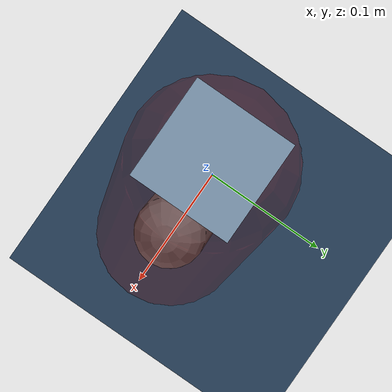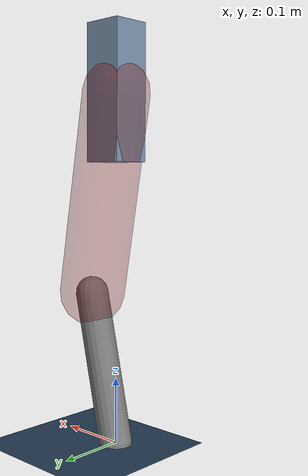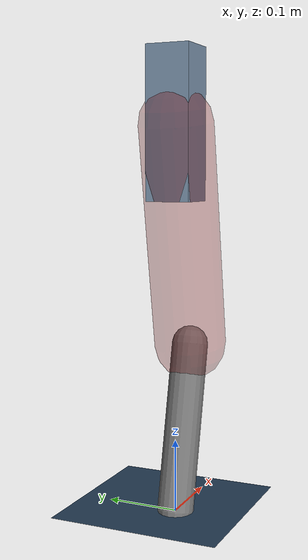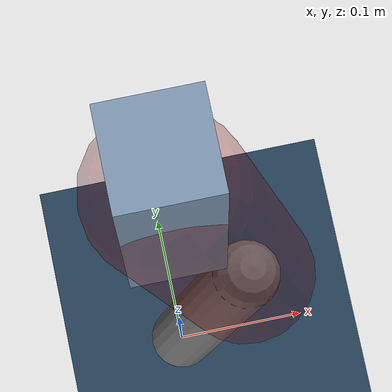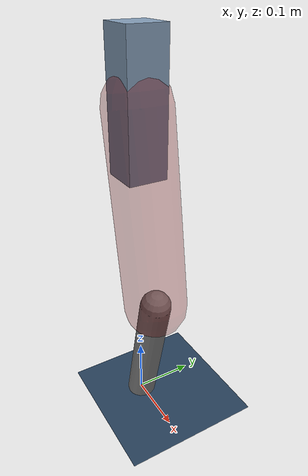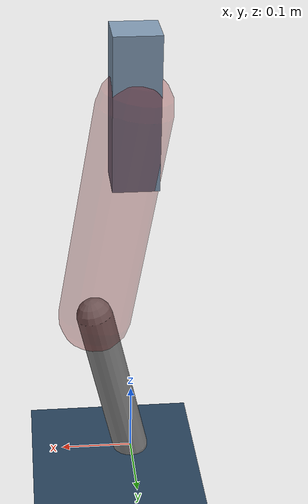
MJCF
<mujoco model="Hopper2D">
	<compiler inertiafromgeom="true" angle="radian" />
	<option timestep="0.001" integrator="implicit" cone="elliptic" solver="Newton" tolerance="1e-10" />

	<default>
		<geom contype="1" conaffinity="1" condim="3" friction="2 0.005 0.0001" solref="0.005 1" />
		<joint limited="true" damping="0.1" />
	</default>

	<asset>
		<texture name="skybox" type="skybox" builtin="gradient" rgb1=".4 .6 .8" rgb2="0 0 0" width="800" height="800" />
		<texture name="grid" type="2d" builtin="checker" rgb1=".1 .2 .3" rgb2=".2 .3 .4" width="300" height="300" mark="edge" markrgb=".2 .3 .4" />
		<material name="ground" texture="grid" texrepeat="1 1" texuniform="true" reflectance="0.1" />
		<material name="leg" rgba="0.5 0.6 0.7 1" />
	</asset>

	<worldbody>

		<geom name="floor" type="plane" size="5 5 0.25" material="ground" />

		<light directional="false" diffuse="0.8 0.8 0.8" specular="0.3 0.3 0.3" pos="0 0 2" dir="0 0 -1" />
		<light mode="targetbodycom" target="base" directional="false" diffuse="0.8 0.8 0.8" specular="0.3 0.3 0.3" pos="0 0 2" dir="0 0 -1" />

		<camera name="fixed" pos="0 -2 1" xyaxes="1 0 0 0 0 1" />
		<camera name="tracking" mode="trackcom" pos="0 -3 1" />

		<body name="root" pos="0 0 0.525406152164369">
			<joint name="slide_x" type="slide" axis="1 0 0" range="-100 100" />
			<joint name="slide_z" type="slide" axis="0 0 1" range="0 10" />

			<body name="base" pos="0 0 0">
				<geom name="torso" type="box" size="0.03 0.03 0.1" mass="3.801" material="leg" />

				<body name="link1" pos="0 0 0" euler="0 1.4020051182947588 0">
					<joint type="hinge" axis="0 -1 0" pos="0 0 0" name="hinge1" limited="true" range="-3.14 3.14" stiffness="0" damping="0.1" />
					<geom name="thigh" type="capsule" fromto="0 0 0 0.30366564462036905 0 0" size="0.05" rgba="0.5 0 0 0.3" mass="0.9986972404749965" />

					<body name="link2" pos="0.30366564462036905 0 0" euler="0 0.3907390107885828 0">
						<joint type="hinge" axis="0 -1 0" pos="0 0 0" name="hinge2" limited="true" range="-3.14 3.14" stiffness="0" damping="0.1" />
						<geom name="shank" type="capsule" fromto="0 0 0 0.23174050754400002 0 0" size="0.025" mass="0.4273924060352" />

					</body>
				</body>
			</body>
		</body>
	</worldbody>

	<actuator>
		<motor name="torque1" joint="hinge1" ctrlrange="-194.10663819411698 194.10663819411698" ctrllimited="true" gear="1" />
		<motor name="torque2" joint="hinge2" ctrlrange="-173.72169555589448 173.72169555589448" ctrllimited="true" gear="1" />
	</actuator>
</mujoco>
